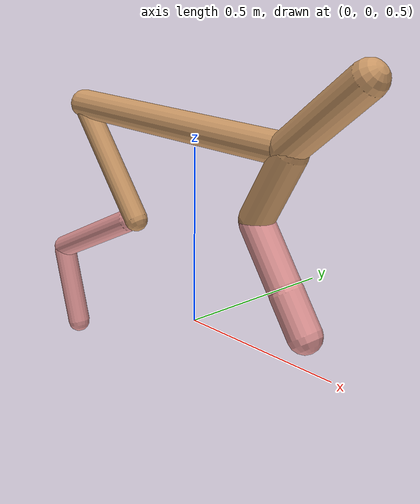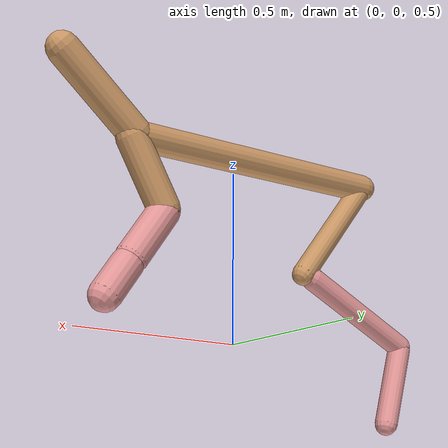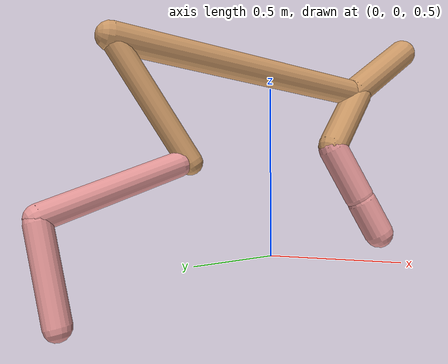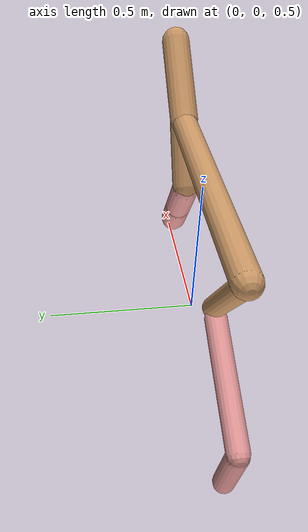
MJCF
<mujoco model="cheetah">
  <compiler angle="radian" coordinate="local" inertiafromgeom="true" settotalmass="14" />
  <default>
    <joint armature=".1" damping=".01" limited="true" solimplimit="0 .8 .03" solreflimit=".02 1" stiffness="8" />
    <geom conaffinity="0" condim="3" contype="1" friction="0.8 .1 .1" rgba="0.8 0.6 .4 1" solimp="0.0 0.8 0.01" solref="0.02 1" />
    <motor ctrllimited="true" ctrlrange="-1 1" />
  </default>
  <size nstack="300000" nuser_geom="1" />
  <option gravity="0 0 -9.81" timestep="0.01" />
  <worldbody>
    <body name="torso" pos="0.0 0.0 1.0506320370261066">
      <joint armature="0" axis="1 0 0" damping="0" limited="false" name="ignorex" pos="0 0 0" stiffness="0" type="slide" />
      <joint armature="0" axis="0 0 1" damping="0" limited="false" name="ignorez" pos="0 0 0" stiffness="0" type="slide" />
      <joint armature="0" axis="0 1 0" damping="0" limited="false" name="ignorey" pos="0 0 0" stiffness="0" type="hinge" />
      <geom fromto="-0.5 0.0 0.0 0.34719665869358773 0.0 0.0" name="torso" size="0.0422358679731994" type="capsule" />
      <geom axisangle="0 1 0 .87" name="head" pos="0.4471966586935877 0.0 0.1" size="0.04759689252544655 0.15" type="capsule" />

      <body name="bthigh" pos="-.5 0 0">
        <joint axis="0 1 0" damping="6" name="bthigh" pos="0 0 0" range="-.52 1.05" stiffness="240" type="hinge" />
        <geom axisangle="0 1 0 -3.8" name="bthigh" pos="0.1262700832886885 0.0 -0.16415110827529505" size="0.03446789173702934 0.1880861401430385" type="capsule" />
        <body name="bshin" pos="0.21254016657737698 0.0 -0.3183022165505901">
          <joint axis="0 1 0" damping="4.5" name="bshin" pos="0 0 0" range="-.785 .785" stiffness="180" type="hinge" />
          <geom axisangle="0 1 0 -2.03" name="bshin" pos="-0.17986629168879312 0.0 -0.08993314584439656" rgba="0.9 0.6 0.6 1" size="0.03446789173702934 0.19457186911348814" type="capsule" />
          <body name="bfoot" pos="-0.35973258337758623 0.0 -0.17986629168879312">
            <joint axis="0 1 0" damping="3" name="bfoot" pos="0 0 0" range="-.4 .785" stiffness="120" type="hinge" />
            <geom axisangle="0 1 0 -.27" name="bfoot" pos="0.038252973032037424 0.0 -0.1236846128035877" rgba="0.9 0.6 0.6 1" size="0.03446789173702934 0.12193170464445256" type="capsule" />
            <inertial mass="10" />
          </body>
        </body>
      </body>
      <body name="fthigh" pos="0.34719665869358773 0.0 0.0">
        <joint axis="0 1 0" damping="4.5" name="fthigh" pos="0 0 0" range="-1.5 0.8" stiffness="180" type="hinge" />
        <geom axisangle="0 1 0 .52" name="fthigh" pos="-0.05854601047925776 0.0 -0.10036458939301329" size="0.04661505754011489 0.11026801316104907" type="capsule" />
        <body name="fshin" pos="-0.11709202095851552 0.0 -0.20072917878602659">
          <joint axis="0 1 0" damping="3" name="fshin" pos="0 0 0" range="-1.2 1.1" stiffness="120" type="hinge" />
          <geom axisangle="0 1 0 -.6" name="fshin" pos="0.05439253730963966 0.0 -0.07531274396719337" rgba="0.9 0.6 0.6 1" size="0.04661505754011489 0.08788277740655039" type="capsule" />
          <body name="ffoot" pos="0.10878507461927932 0.0 -0.15062548793438674">
            <joint axis="0 1 0" damping="1.5" name="ffoot" pos="0 0 0" range="-3.1 -0.3" stiffness="60" type="hinge" />
            <geom axisangle="0 1 0 -.6" name="ffoot" pos="0.03853026607957828 0.0 -0.05993596945712178" rgba="0.9 0.6 0.6 1" size="0.04661505754011489 0.05803579640055215" type="capsule" />
            <inertial mass="10" />
          </body>
        </body>
      </body>
    </body>
  </worldbody>
  <actuator>
    <motor gear="120" joint="bthigh" name="bthigh" />
    <motor gear="90" joint="bshin" name="bshin" />
    <motor gear="60" joint="bfoot" name="bfoot" />
    <motor gear="120" joint="fthigh" name="fthigh" />
    <motor gear="60" joint="fshin" name="fshin" />
    <motor gear="30" joint="ffoot" name="ffoot" />
  </actuator>
</mujoco>
